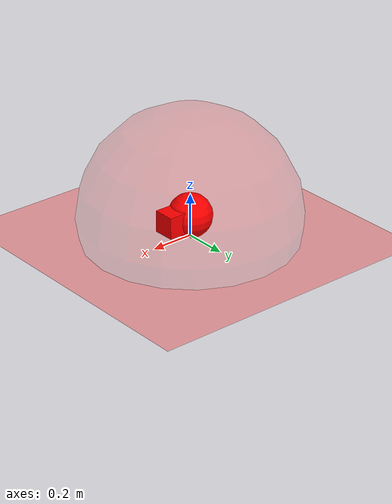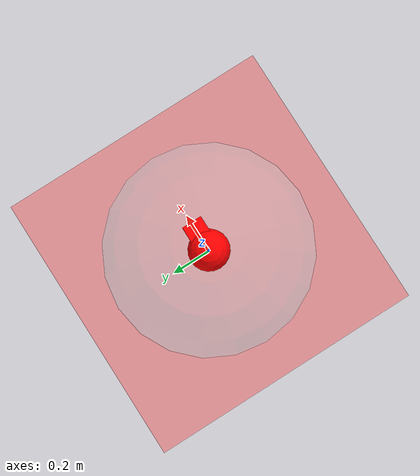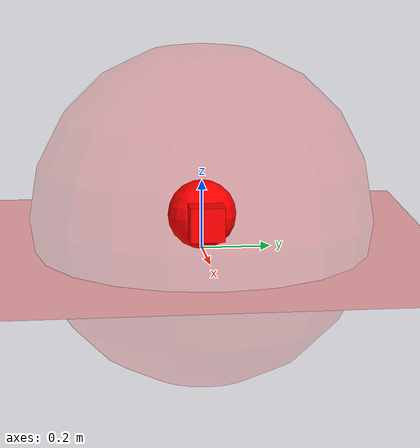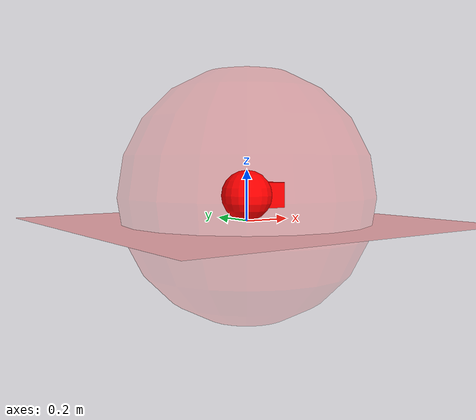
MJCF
<mujoco>
    <size njmax="3000" nconmax="1000"/>
    <option timestep="0.002"/>
    <default>
        <geom condim="6" density="1" rgba="1 0 0 1"/>
        <joint damping=".01"/>
        <motor ctrlrange="-1 1" ctrllimited="true" forcerange="-.2 .2" forcelimited="true"/>
        <velocity ctrlrange="-1 1" ctrllimited="true" forcerange="-.2 .2" forcelimited="true"/>
        <site size="0.5" type="sphere"/>
    </default>
    <worldbody>
        <geom name="floor" size="5 5 0.1" type="plane" condim="6"/>
        <body name="robot" pos="0 0 .1">
            <camera name="vision" pos="0 0 .15" xyaxes="0 -1 0 .4 0 1" fovy="90"/>
            <joint type="slide" axis="1 0 0" name="x" damping="0.01"/>
            <joint type="slide" axis="0 1 0" name="y" damping="0.01"/>
            <joint type="hinge" axis="0 0 1" name="z" damping="0.005"/>
            <geom name="robot" type="sphere" size=".1" friction="1 0.01 0.01"/>
            <geom name="pointarrow" pos="0.1 0 0" size="0.05 0.05 0.05" type="box"/>
            <site name="robot" rgba="1 0 0 .1"/>
        </body>
    </worldbody>
    <sensor>
        <!-- Used for observation -->
        <accelerometer site="robot" name="accelerometer"/>
        <velocimeter site="robot" name="velocimeter"/>
        <gyro site="robot" name="gyro"/>
        <magnetometer site="robot" name="magnetometer"/>

        <!-- Used for intrinsic constraints -->
        <subtreecom body="robot" name="subtreecom"/>
        <subtreelinvel body="robot" name="subtreelinvel"/>
        <subtreeangmom body="robot" name="subtreeangmom"/>
    </sensor>
    <actuator>
        <motor gear="1.0 0 0 0 0 0" site="robot" name="x"/>
        <velocity gear="1.0" jointinparent="z" name="z"/>
    </actuator>
</mujoco>
